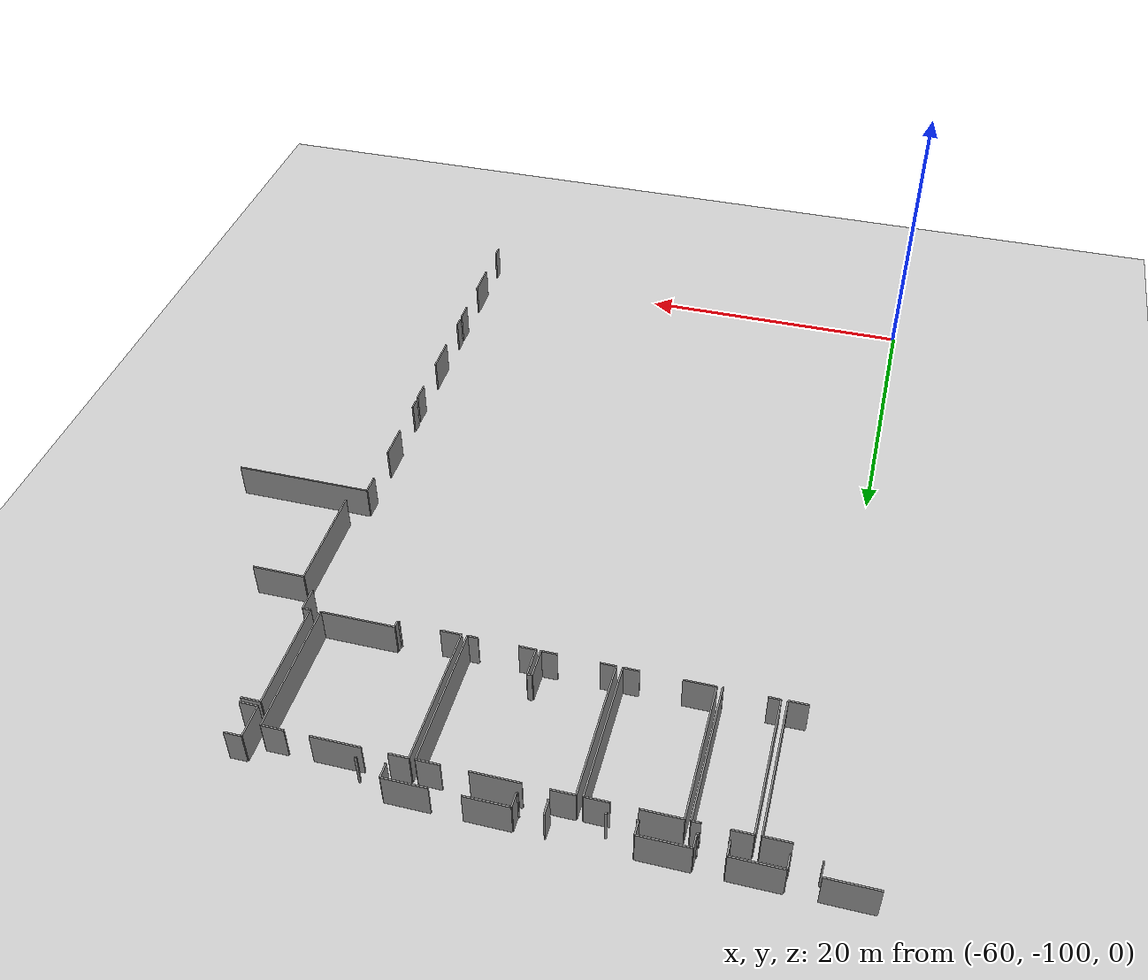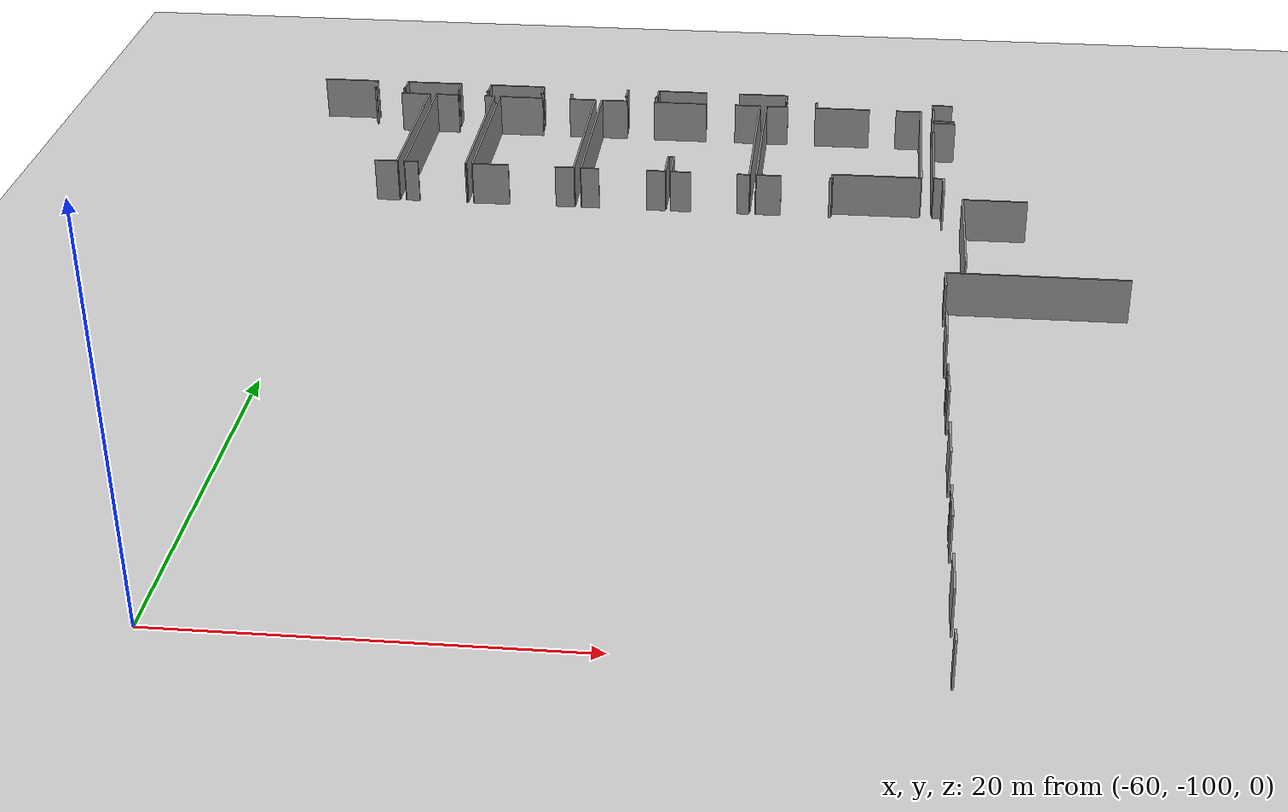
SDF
<sdf version="1.6">
 <world name="default">
  <model name="ground_plane">
   <static>1</static>
   <link name="link">
    <collision name="collision">
     <geometry><plane><normal>0 0 1</normal><size>100 100</size></plane></geometry>
     <surface><friction><ode><mu>100</mu><mu2>50</mu2></ode></friction></surface>
    </collision>
    <visual name="visual">
     <cast_shadows>0</cast_shadows>
     <geometry><plane><normal>0 0 1</normal><size>100 100</size></plane></geometry>
     <material>
      <script><uri>file://media/materials/scripts/gazebo.material</uri><name>Gazebo/Grey</name></script>
     </material>
    </visual>
   </link>
  </model>
  <model name="0510045925_40">
   <static>1</static>
   <link name="Wall_1199">
    <collision name="Wall_1199_Collision">
     <geometry><box><size>1.75046318621 0.1 2.5</size></box></geometry>
     <pose>0.875231593107 0 1.25 0 0 0</pose>
    </collision>
    <visual name="Wall_1199_Visual">
     <pose>0.875231593107 0 1.25 0 0 0</pose>
     <geometry><box><size>1.75046318621 0.1 2.5</size></box></geometry>
     <material>
      <script><uri>file://media/materials/scripts/gazebo.material</uri><name>Gazebo/Grey</name></script>
      <ambient>1 1 1 1</ambient>
     </material>
    </visual>
    <pose>75.0214969163 -150.762341057 0 0 0 0.0</pose>
   </link>
   <link name="Wall_1200">
    <collision name="Wall_1200_Collision">
     <geometry><box><size>9.61625339458 0.1 2.5</size></box></geometry>
     <pose>4.80812669729 0 1.25 0 0 0</pose>
    </collision>
    <visual name="Wall_1200_Visual">
     <pose>4.80812669729 0 1.25 0 0 0</pose>
     <geometry><box><size>9.61625339458 0.1 2.5</size></box></geometry>
     <material>
      <script><uri>file://media/materials/scripts/gazebo.material</uri><name>Gazebo/Grey</name></script>
      <ambient>1 1 1 1</ambient>
     </material>
    </visual>
    <pose>76.7719601025 -150.762341057 0 0 0 -1.57079632679</pose>
   </link>
   <link name="Wall_1201">
    <collision name="Wall_1201_Collision">
     <geometry><box><size>1.31341844116 0.1 2.5</size></box></geometry>
     <pose>0.656709220578 0 1.25 0 0 0</pose>
    </collision>
    <visual name="Wall_1201_Visual">
     <pose>0.656709220578 0 1.25 0 0 0</pose>
     <geometry><box><size>1.31341844116 0.1 2.5</size></box></geometry>
     <material>
      <script><uri>file://media/materials/scripts/gazebo.material</uri><name>Gazebo/Grey</name></script>
      <ambient>1 1 1 1</ambient>
     </material>
    </visual>
    <pose>76.7719601025 -160.378594452 0 0 0 3.14159265359</pose>
   </link>
   <link name="Wall_1205">
    <collision name="Wall_1205_Collision">
     <geometry><box><size>9.60787797264 0.1 2.5</size></box></geometry>
     <pose>4.80393898632 0 1.25 0 0 0</pose>
    </collision>
    <visual name="Wall_1205_Visual">
     <pose>4.80393898632 0 1.25 0 0 0</pose>
     <geometry><box><size>9.60787797264 0.1 2.5</size></box></geometry>
     <material>
      <script><uri>file://media/materials/scripts/gazebo.material</uri><name>Gazebo/Grey</name></script>
      <ambient>1 1 1 1</ambient>
     </material>
    </visual>
    <pose>77.1859089871 -160.346361767 0 0 0 1.57079632679</pose>
   </link>
   <link name="Wall_1206">
    <collision name="Wall_1206_Collision">
     <geometry><box><size>1.35884876018 0.1 2.5</size></box></geometry>
     <pose>0.679424380092 0 1.25 0 0 0</pose>
    </collision>
    <visual name="Wall_1206_Visual">
     <pose>0.679424380092 0 1.25 0 0 0</pose>
     <geometry><box><size>1.35884876018 0.1 2.5</size></box></geometry>
     <material>
      <script><uri>file://media/materials/scripts/gazebo.material</uri><name>Gazebo/Grey</name></script>
      <ambient>1 1 1 1</ambient>
     </material>
    </visual>
    <pose>77.1859089871 -150.738483795 0 0 0 0.0</pose>
   </link>
   <link name="Wall_1207">
    <collision name="Wall_1207_Collision">
     <geometry><box><size>0.575112306794 0.1 2.5</size></box></geometry>
     <pose>0.287556153397 0 1.25 0 0 0</pose>
    </collision>
    <visual name="Wall_1207_Visual">
     <pose>0.287556153397 0 1.25 0 0 0</pose>
     <geometry><box><size>0.575112306794 0.1 2.5</size></box></geometry>
     <material>
      <script><uri>file://media/materials/scripts/gazebo.material</uri><name>Gazebo/Grey</name></script>
      <ambient>1 1 1 1</ambient>
     </material>
    </visual>
    <pose>80.1926854648 -150.738483795 0 0 0 0.0</pose>
   </link>
   <link name="Wall_1208">
    <collision name="Wall_1208_Collision">
     <geometry><box><size>9.61955280323 0.1 2.5</size></box></geometry>
     <pose>4.80977640161 0 1.25 0 0 0</pose>
    </collision>
    <visual name="Wall_1208_Visual">
     <pose>4.80977640161 0 1.25 0 0 0</pose>
     <geometry><box><size>9.61955280323 0.1 2.5</size></box></geometry>
     <material>
      <script><uri>file://media/materials/scripts/gazebo.material</uri><name>Gazebo/Grey</name></script>
      <ambient>1 1 1 1</ambient>
     </material>
    </visual>
    <pose>80.7677977716 -150.738483795 0 0 0 -1.57079632679</pose>
   </link>
   <link name="Wall_1209">
    <collision name="Wall_1209_Collision">
     <geometry><box><size>0.0657343722241 0.1 2.5</size></box></geometry>
     <pose>0.032867186112 0 1.25 0 0 0</pose>
    </collision>
    <visual name="Wall_1209_Visual">
     <pose>0.032867186112 0 1.25 0 0 0</pose>
     <geometry><box><size>0.0657343722241 0.1 2.5</size></box></geometry>
     <material>
      <script><uri>file://media/materials/scripts/gazebo.material</uri><name>Gazebo/Grey</name></script>
      <ambient>1 1 1 1</ambient>
     </material>
    </visual>
    <pose>80.7677977716 -160.358036598 0 0 0 3.14159265359</pose>
   </link>
   <link name="Wall_1210">
    <collision name="Wall_1210_Collision">
     <geometry><box><size>0.777986642006 0.1 2.5</size></box></geometry>
     <pose>0.388993321003 0 1.25 0 0 0</pose>
    </collision>
    <visual name="Wall_1210_Visual">
     <pose>0.388993321003 0 1.25 0 0 0</pose>
     <geometry><box><size>0.777986642006 0.1 2.5</size></box></geometry>
     <material>
      <script><uri>file://media/materials/scripts/gazebo.material</uri><name>Gazebo/Grey</name></script>
      <ambient>1 1 1 1</ambient>
     </material>
    </visual>
    <pose>77.9638080252 -160.358036598 0 0 0 3.12658562367</pose>
   </link>
   <link name="Wall_1211">
    <collision name="Wall_1211_Collision">
     <geometry><box><size>9.60026395269 0.1 2.5</size></box></geometry>
     <pose>4.80013197635 0 1.25 0 0 0</pose>
    </collision>
    <visual name="Wall_1211_Visual">
     <pose>4.80013197635 0 1.25 0 0 0</pose>
     <geometry><box><size>9.60026395269 0.1 2.5</size></box></geometry>
     <material>
      <script><uri>file://media/materials/scripts/gazebo.material</uri><name>Gazebo/Grey</name></script>
      <ambient>1 1 1 1</ambient>
     </material>
    </visual>
    <pose>81.1373315398 -160.350168777 0 0 0 1.57079632679</pose>
   </link>
   <link name="Wall_1212">
    <collision name="Wall_1212_Collision">
     <geometry><box><size>2.64003451689 0.1 2.5</size></box></geometry>
     <pose>1.32001725845 0 1.25 0 0 0</pose>
    </collision>
    <visual name="Wall_1212_Visual">
     <pose>1.32001725845 0 1.25 0 0 0</pose>
     <geometry><box><size>2.64003451689 0.1 2.5</size></box></geometry>
     <material>
      <script><uri>file://media/materials/scripts/gazebo.material</uri><name>Gazebo/Grey</name></script>
      <ambient>1 1 1 1</ambient>
     </material>
    </visual>
    <pose>81.1373315398 -150.749904825 0 0 0 0.0</pose>
   </link>
   <link name="Wall_1213">
    <collision name="Wall_1213_Collision">
     <geometry><box><size>1.57483312606 0.1 2.5</size></box></geometry>
     <pose>0.787416563031 0 1.25 0 0 0</pose>
    </collision>
    <visual name="Wall_1213_Visual">
     <pose>0.787416563031 0 1.25 0 0 0</pose>
     <geometry><box><size>1.57483312606 0.1 2.5</size></box></geometry>
     <material>
      <script><uri>file://media/materials/scripts/gazebo.material</uri><name>Gazebo/Grey</name></script>
      <ambient>1 1 1 1</ambient>
     </material>
    </visual>
    <pose>85.4379838075 -150.749904825 0 0 0 0.0</pose>
   </link>
   <link name="Wall_1214">
    <collision name="Wall_1214_Collision">
     <geometry><box><size>9.59391893607 0.1 2.5</size></box></geometry>
     <pose>4.79695946803 0 1.25 0 0 0</pose>
    </collision>
    <visual name="Wall_1214_Visual">
     <pose>4.79695946803 0 1.25 0 0 0</pose>
     <geometry><box><size>9.59391893607 0.1 2.5</size></box></geometry>
     <material>
      <script><uri>file://media/materials/scripts/gazebo.material</uri><name>Gazebo/Grey</name></script>
      <ambient>1 1 1 1</ambient>
     </material>
    </visual>
    <pose>87.0128169336 -150.749904825 0 0 0 -1.57079632679</pose>
   </link>
   <link name="Wall_1215">
    <collision name="Wall_1215_Collision">
     <geometry><box><size>1.08372883937 0.1 2.5</size></box></geometry>
     <pose>0.541864419685 0 1.25 0 0 0</pose>
    </collision>
    <visual name="Wall_1215_Visual">
     <pose>0.541864419685 0 1.25 0 0 0</pose>
     <geometry><box><size>1.08372883937 0.1 2.5</size></box></geometry>
     <material>
      <script><uri>file://media/materials/scripts/gazebo.material</uri><name>Gazebo/Grey</name></script>
      <ambient>1 1 1 1</ambient>
     </material>
    </visual>
    <pose>87.0128169336 -160.343823761 0 0 0 3.14159265359</pose>
   </link>
   <link name="Wall_1216">
    <collision name="Wall_1216_Collision">
     <geometry><box><size>2.09691069356 0.1 2.5</size></box></geometry>
     <pose>1.04845534678 0 1.25 0 0 0</pose>
    </collision>
    <visual name="Wall_1216_Visual">
     <pose>1.04845534678 0 1.25 0 0 0</pose>
     <geometry><box><size>2.09691069356 0.1 2.5</size></box></geometry>
     <material>
      <script><uri>file://media/materials/scripts/gazebo.material</uri><name>Gazebo/Grey</name></script>
      <ambient>1 1 1 1</ambient>
     </material>
    </visual>
    <pose>83.2342326337 -160.343823761 0 0 0 -3.13856676111</pose>
   </link>
   <link name="Wall_1217">
    <collision name="Wall_1217_Collision">
     <geometry><box><size>9.61853760057 0.1 2.5</size></box></geometry>
     <pose>4.80926880028 0 1.25 0 0 0</pose>
    </collision>
    <visual name="Wall_1217_Visual">
     <pose>4.80926880028 0 1.25 0 0 0</pose>
     <geometry><box><size>9.61853760057 0.1 2.5</size></box></geometry>
     <material>
      <script><uri>file://media/materials/scripts/gazebo.material</uri><name>Gazebo/Grey</name></script>
      <ambient>1 1 1 1</ambient>
     </material>
    </visual>
    <pose>87.4298114261 -160.353975787 0 0 0 1.57079632679</pose>
   </link>
   <link name="Wall_1218">
    <collision name="Wall_1218_Collision">
     <geometry><box><size>1.55732088018 0.1 2.5</size></box></geometry>
     <pose>0.77866044009 0 1.25 0 0 0</pose>
    </collision>
    <visual name="Wall_1218_Visual">
     <pose>0.77866044009 0 1.25 0 0 0</pose>
     <geometry><box><size>1.55732088018 0.1 2.5</size></box></geometry>
     <material>
      <script><uri>file://media/materials/scripts/gazebo.material</uri><name>Gazebo/Grey</name></script>
      <ambient>1 1 1 1</ambient>
     </material>
    </visual>
    <pose>87.4298114261 -150.735438187 0 0 0 0.0</pose>
   </link>
   <link name="Wall_1219">
    <collision name="Wall_1219_Collision">
     <geometry><box><size>3.20677140174 0.1 2.5</size></box></geometry>
     <pose>1.60338570087 0 1.25 0 0 0</pose>
    </collision>
    <visual name="Wall_1219_Visual">
     <pose>1.60338570087 0 1.25 0 0 0</pose>
     <geometry><box><size>3.20677140174 0.1 2.5</size></box></geometry>
     <material>
      <script><uri>file://media/materials/scripts/gazebo.material</uri><name>Gazebo/Grey</name></script>
      <ambient>1 1 1 1</ambient>
     </material>
    </visual>
    <pose>90.6294764092 -150.735438187 0 0 0 0.0</pose>
   </link>
   <link name="Wall_1220">
    <collision name="Wall_1220_Collision">
     <geometry><box><size>1.51798177711 0.1 2.5</size></box></geometry>
     <pose>0.758990888556 0 1.25 0 0 0</pose>
    </collision>
    <visual name="Wall_1220_Visual">
     <pose>0.758990888556 0 1.25 0 0 0</pose>
     <geometry><box><size>1.51798177711 0.1 2.5</size></box></geometry>
     <material>
      <script><uri>file://media/materials/scripts/gazebo.material</uri><name>Gazebo/Grey</name></script>
      <ambient>1 1 1 1</ambient>
     </material>
    </visual>
    <pose>95.5765589706 -150.735438187 0 0 0 0.0</pose>
   </link>
   <link name="Wall_1221">
    <collision name="Wall_1221_Collision">
     <geometry><box><size>9.62183700921 0.1 2.5</size></box></geometry>
     <pose>4.81091850461 0 1.25 0 0 0</pose>
    </collision>
    <visual name="Wall_1221_Visual">
     <pose>4.81091850461 0 1.25 0 0 0</pose>
     <geometry><box><size>9.62183700921 0.1 2.5</size></box></geometry>
     <material>
      <script><uri>file://media/materials/scripts/gazebo.material</uri><name>Gazebo/Grey</name></script>
      <ambient>1 1 1 1</ambient>
     </material>
    </visual>
    <pose>97.0945407477 -150.735438187 0 0 0 -1.57079632679</pose>
   </link>
   <link name="Wall_1222">
    <collision name="Wall_1222_Collision">
     <geometry><box><size>0.702012639273 0.1 2.5</size></box></geometry>
     <pose>0.351006319637 0 1.25 0 0 0</pose>
    </collision>
    <visual name="Wall_1222_Visual">
     <pose>0.351006319637 0 1.25 0 0 0</pose>
     <geometry><box><size>0.702012639273 0.1 2.5</size></box></geometry>
     <material>
      <script><uri>file://media/materials/scripts/gazebo.material</uri><name>Gazebo/Grey</name></script>
      <ambient>1 1 1 1</ambient>
     </material>
    </visual>
    <pose>97.0945407477 -160.357275196 0 0 0 3.14159265359</pose>
   </link>
   <link name="Wall_1223">
    <collision name="Wall_1223_Collision">
     <geometry><box><size>1.13550417502 0.1 2.5</size></box></geometry>
     <pose>0.56775208751 0 1.25 0 0 0</pose>
    </collision>
    <visual name="Wall_1223_Visual">
     <pose>0.56775208751 0 1.25 0 0 0</pose>
     <geometry><box><size>1.13550417502 0.1 2.5</size></box></geometry>
     <material>
      <script><uri>file://media/materials/scripts/gazebo.material</uri><name>Gazebo/Grey</name></script>
      <ambient>1 1 1 1</ambient>
     </material>
    </visual>
    <pose>93.7258445217 -160.357275196 0 0 0 3.14159265359</pose>
   </link>
   <link name="Wall_1224">
    <collision name="Wall_1224_Collision">
     <geometry><box><size>1.97913758534 0.1 2.5</size></box></geometry>
     <pose>0.98956879267 0 1.25 0 0 0</pose>
    </collision>
    <visual name="Wall_1224_Visual">
     <pose>0.98956879267 0 1.25 0 0 0</pose>
     <geometry><box><size>1.97913758534 0.1 2.5</size></box></geometry>
     <material>
      <script><uri>file://media/materials/scripts/gazebo.material</uri><name>Gazebo/Grey</name></script>
      <ambient>1 1 1 1</ambient>
     </material>
    </visual>
    <pose>92.5903403467 -160.357275196 0 0 0 1.57079632679</pose>
   </link>
   <link name="Wall_1225">
    <collision name="Wall_1225_Collision">
     <geometry><box><size>0.317758432527 0.1 2.5</size></box></geometry>
     <pose>0.158879216264 0 1.25 0 0 0</pose>
    </collision>
    <visual name="Wall_1225_Visual">
     <pose>0.158879216264 0 1.25 0 0 0</pose>
     <geometry><box><size>0.317758432527 0.1 2.5</size></box></geometry>
     <material>
      <script><uri>file://media/materials/scripts/gazebo.material</uri><name>Gazebo/Grey</name></script>
      <ambient>1 1 1 1</ambient>
     </material>
    </visual>
    <pose>92.5903403467 -158.378137611 0 0 0 3.14159265359</pose>
   </link>
   <link name="Wall_1226">
    <collision name="Wall_1226_Collision">
     <geometry><box><size>1.96822415675 0.1 2.5</size></box></geometry>
     <pose>0.984112078374 0 1.25 0 0 0</pose>
    </collision>
    <visual name="Wall_1226_Visual">
     <pose>0.984112078374 0 1.25 0 0 0</pose>
     <geometry><box><size>1.96822415675 0.1 2.5</size></box></geometry>
     <material>
      <script><uri>file://media/materials/scripts/gazebo.material</uri><name>Gazebo/Grey</name></script>
      <ambient>1 1 1 1</ambient>
     </material>
    </visual>
    <pose>92.2725819142 -158.378137611 0 0 0 -1.57079632679</pose>
   </link>
   <link name="Wall_1227">
    <collision name="Wall_1227_Collision">
     <geometry><box><size>1.06418618817 0.1 2.5</size></box></geometry>
     <pose>0.532093094084 0 1.25 0 0 0</pose>
    </collision>
    <visual name="Wall_1227_Visual">
     <pose>0.532093094084 0 1.25 0 0 0</pose>
     <geometry><box><size>1.06418618817 0.1 2.5</size></box></geometry>
     <material>
      <script><uri>file://media/materials/scripts/gazebo.material</uri><name>Gazebo/Grey</name></script>
      <ambient>1 1 1 1</ambient>
     </material>
    </visual>
    <pose>92.2725819142 -160.346361767 0 0 0 3.14159265359</pose>
   </link>
   <link name="Wall_1228">
    <collision name="Wall_1228_Collision">
     <geometry><box><size>1.02309881305 0.1 2.5</size></box></geometry>
     <pose>0.511549406523 0 1.25 0 0 0</pose>
    </collision>
    <visual name="Wall_1228_Visual">
     <pose>0.511549406523 0 1.25 0 0 0</pose>
     <geometry><box><size>1.02309881305 0.1 2.5</size></box></geometry>
     <material>
      <script><uri>file://media/materials/scripts/gazebo.material</uri><name>Gazebo/Grey</name></script>
      <ambient>1 1 1 1</ambient>
     </material>
    </visual>
    <pose>88.4528819066 -160.346361767 0 0 0 -3.13415046899</pose>
   </link>
   <link name="Wall_1229">
    <collision name="Wall_1229_Collision">
     <geometry><box><size>9.61726859724 0.1 2.5</size></box></geometry>
     <pose>4.80863429862 0 1.25 0 0 0</pose>
    </collision>
    <visual name="Wall_1229_Visual">
     <pose>4.80863429862 0 1.25 0 0 0</pose>
     <geometry><box><size>9.61726859724 0.1 2.5</size></box></geometry>
     <material>
      <script><uri>file://media/materials/scripts/gazebo.material</uri><name>Gazebo/Grey</name></script>
      <ambient>1 1 1 1</ambient>
     </material>
    </visual>
    <pose>97.4795563564 -160.341793355 0 0 0 1.57079632679</pose>
   </link>
   <link name="Wall_1230">
    <collision name="Wall_1230_Collision">
     <geometry><box><size>1.31646404914 0.1 2.5</size></box></geometry>
     <pose>0.658232024568 0 1.25 0 0 0</pose>
    </collision>
    <visual name="Wall_1230_Visual">
     <pose>0.658232024568 0 1.25 0 0 0</pose>
     <geometry><box><size>1.31646404914 0.1 2.5</size></box></geometry>
     <material>
      <script><uri>file://media/materials/scripts/gazebo.material</uri><name>Gazebo/Grey</name></script>
      <ambient>1 1 1 1</ambient>
     </material>
    </visual>
    <pose>97.4795563564 -150.724524758 0 0 0 0.0</pose>
   </link>
   <link name="Wall_1231">
    <collision name="Wall_1231_Collision">
     <geometry><box><size>3.28316540189 0.1 2.5</size></box></geometry>
     <pose>1.64158270095 0 1.25 0 0 0</pose>
    </collision>
    <visual name="Wall_1231_Visual">
     <pose>1.64158270095 0 1.25 0 0 0</pose>
     <geometry><box><size>3.28316540189 0.1 2.5</size></box></geometry>
     <material>
      <script><uri>file://media/materials/scripts/gazebo.material</uri><name>Gazebo/Grey</name></script>
      <ambient>1 1 1 1</ambient>
     </material>
    </visual>
    <pose>100.444455724 -150.724524758 0 0 0 0.0</pose>
   </link>
   <link name="Wall_1232">
    <collision name="Wall_1232_Collision">
     <geometry><box><size>1.4948859166 0.1 2.5</size></box></geometry>
     <pose>0.747442958301 0 1.25 0 0 0</pose>
    </collision>
    <visual name="Wall_1232_Visual">
     <pose>0.747442958301 0 1.25 0 0 0</pose>
     <geometry><box><size>1.4948859166 0.1 2.5</size></box></geometry>
     <material>
      <script><uri>file://media/materials/scripts/gazebo.material</uri><name>Gazebo/Grey</name></script>
      <ambient>1 1 1 1</ambient>
     </material>
    </visual>
    <pose>105.326057714 -150.724524758 0 0 0 0.0</pose>
   </link>
   <link name="Wall_1233">
    <collision name="Wall_1233_Collision">
     <geometry><box><size>9.1685490216 0.1 2.5</size></box></geometry>
     <pose>4.5842745108 0 1.25 0 0 0</pose>
    </collision>
    <visual name="Wall_1233_Visual">
     <pose>4.5842745108 0 1.25 0 0 0</pose>
     <geometry><box><size>9.1685490216 0.1 2.5</size></box></geometry>
     <material>
      <script><uri>file://media/materials/scripts/gazebo.material</uri><name>Gazebo/Grey</name></script>
      <ambient>1 1 1 1</ambient>
     </material>
    </visual>
    <pose>106.820943631 -150.724524758 0 0 0 -1.57079632679</pose>
   </link>
   <link name="Wall_1234">
    <collision name="Wall_1234_Collision">
     <geometry><box><size>5.0445420167 0.1 2.5</size></box></geometry>
     <pose>2.52227100835 0 1.25 0 0 0</pose>
    </collision>
    <visual name="Wall_1234_Visual">
     <pose>2.52227100835 0 1.25 0 0 0</pose>
     <geometry><box><size>5.0445420167 0.1 2.5</size></box></geometry>
     <material>
      <script><uri>file://media/materials/scripts/gazebo.material</uri><name>Gazebo/Grey</name></script>
      <ambient>1 1 1 1</ambient>
     </material>
    </visual>
    <pose>106.820943631 -159.89307378 0 0 0 3.14159265359</pose>
   </link>
   <link name="Wall_1235">
    <collision name="Wall_1235_Collision">
     <geometry><box><size>0.460902007563 0.1 2.5</size></box></geometry>
     <pose>0.230451003782 0 1.25 0 0 0</pose>
    </collision>
    <visual name="Wall_1235_Visual">
     <pose>0.230451003782 0 1.25 0 0 0</pose>
     <geometry><box><size>0.460902007563 0.1 2.5</size></box></geometry>
     <material>
      <script><uri>file://media/materials/scripts/gazebo.material</uri><name>Gazebo/Grey</name></script>
      <ambient>1 1 1 1</ambient>
     </material>
    </visual>
    <pose>101.776401614 -159.89307378 0 0 0 -1.57079632679</pose>
   </link>
   <link name="Wall_1236">
    <collision name="Wall_1236_Collision">
     <geometry><box><size>0.144158777696 0.1 2.5</size></box></geometry>
     <pose>0.072079388848 0 1.25 0 0 0</pose>
    </collision>
    <visual name="Wall_1236_Visual">
     <pose>0.072079388848 0 1.25 0 0 0</pose>
     <geometry><box><size>0.144158777696 0.1 2.5</size></box></geometry>
     <material>
      <script><uri>file://media/materials/scripts/gazebo.material</uri><name>Gazebo/Grey</name></script>
      <ambient>1 1 1 1</ambient>
     </material>
    </visual>
    <pose>101.776401614 -160.353975787 0 0 0 3.14159265359</pose>
   </link>
   <link name="Wall_1237">
    <collision name="Wall_1237_Collision">
     <geometry><box><size>1.4231124727 0.1 2.5</size></box></geometry>
     <pose>0.711556236352 0 1.25 0 0 0</pose>
    </collision>
    <visual name="Wall_1237_Visual">
     <pose>0.711556236352 0 1.25 0 0 0</pose>
     <geometry><box><size>1.4231124727 0.1 2.5</size></box></geometry>
     <material>
      <script><uri>file://media/materials/scripts/gazebo.material</uri><name>Gazebo/Grey</name></script>
      <ambient>1 1 1 1</ambient>
     </material>
    </visual>
    <pose>98.9026166849 -160.353975787 0 0 0 3.13303213505</pose>
   </link>
   <link name="Wall_1318">
    <collision name="Wall_1318_Collision">
     <geometry><box><size>0.144412578361 0.1 2.5</size></box></geometry>
     <pose>0.0722062891805 0 1.25 0 0 0</pose>
    </collision>
    <visual name="Wall_1318_Visual">
     <pose>0.0722062891805 0 1.25 0 0 0</pose>
     <geometry><box><size>0.144412578361 0.1 2.5</size></box></geometry>
     <material>
      <script><uri>file://media/materials/scripts/gazebo.material</uri><name>Gazebo/Grey</name></script>
      <ambient>1 1 1 1</ambient>
     </material>
    </visual>
    <pose>100.585315094 -150.010329687 0 0 0 3.14159265359</pose>
   </link>
   <link name="Wall_1319">
    <collision name="Wall_1319_Collision">
     <geometry><box><size>0.0928910433745 0.1 2.5</size></box></geometry>
     <pose>0.0464455216873 0 1.25 0 0 0</pose>
    </collision>
    <visual name="Wall_1319_Visual">
     <pose>0.0464455216873 0 1.25 0 0 0</pose>
     <geometry><box><size>0.0928910433745 0.1 2.5</size></box></geometry>
     <material>
      <script><uri>file://media/materials/scripts/gazebo.material</uri><name>Gazebo/Grey</name></script>
      <ambient>1 1 1 1</ambient>
     </material>
    </visual>
    <pose>98.7307936347 -150.010329687 0 0 0 3.14159265359</pose>
   </link>
   <link name="Wall_1320">
    <collision name="Wall_1320_Collision">
     <geometry><box><size>0.952513895586 0.1 2.5</size></box></geometry>
     <pose>0.476256947793 0 1.25 0 0 0</pose>
    </collision>
    <visual name="Wall_1320_Visual">
     <pose>0.476256947793 0 1.25 0 0 0</pose>
     <geometry><box><size>0.952513895586 0.1 2.5</size></box></geometry>
     <material>
      <script><uri>file://media/materials/scripts/gazebo.material</uri><name>Gazebo/Grey</name></script>
      <ambient>1 1 1 1</ambient>
     </material>
    </visual>
    <pose>98.6379025913 -150.010329687 0 0 0 1.57079632679</pose>
   </link>
   <link name="Wall_1321">
    <collision name="Wall_1321_Collision">
     <geometry><box><size>2.92632166696 0.1 2.5</size></box></geometry>
     <pose>1.46316083348 0 1.25 0 0 0</pose>
    </collision>
    <visual name="Wall_1321_Visual">
     <pose>1.46316083348 0 1.25 0 0 0</pose>
     <geometry><box><size>2.92632166696 0.1 2.5</size></box></geometry>
     <material>
      <script><uri>file://media/materials/scripts/gazebo.material</uri><name>Gazebo/Grey</name></script>
      <ambient>1 1 1 1</ambient>
     </material>
    </visual>
    <pose>98.6379025913 -149.057815791 0 0 0 3.14159265359</pose>
   </link>
   <link name="Wall_1322">
    <collision name="Wall_1322_Collision">
     <geometry><box><size>2.97860460394 0.1 2.5</size></box></geometry>
     <pose>1.48930230197 0 1.25 0 0 0</pose>
    </collision>
    <visual name="Wall_1322_Visual">
     <pose>1.48930230197 0 1.25 0 0 0</pose>
     <geometry><box><size>2.97860460394 0.1 2.5</size></box></geometry>
     <material>
      <script><uri>file://media/materials/scripts/gazebo.material</uri><name>Gazebo/Grey</name></script>
      <ambient>1 1 1 1</ambient>
     </material>
    </visual>
    <pose>93.7390421563 -149.057815791 0 0 0 3.14159265359</pose>
   </link>
   <link name="Wall_1323">
    <collision name="Wall_1323_Collision">
     <geometry><box><size>0.96393492551 0.1 2.5</size></box></geometry>
     <pose>0.481967462755 0 1.25 0 0 0</pose>
    </collision>
    <visual name="Wall_1323_Visual">
     <pose>0.481967462755 0 1.25 0 0 0</pose>
     <geometry><box><size>0.96393492551 0.1 2.5</size></box></geometry>
     <material>
      <script><uri>file://media/materials/scripts/gazebo.material</uri><name>Gazebo/Grey</name></script>
      <ambient>1 1 1 1</ambient>
     </material>
    </visual>
    <pose>90.7604375523 -149.057815791 0 0 0 -1.57079632679</pose>
   </link>
   <link name="Wall_1324">
    <collision name="Wall_1324_Collision">
     <geometry><box><size>0.124362325829 0.1 2.5</size></box></geometry>
     <pose>0.0621811629146 0 1.25 0 0 0</pose>
    </collision>
    <visual name="Wall_1324_Visual">
     <pose>0.0621811629146 0 1.25 0 0 0</pose>
     <geometry><box><size>0.124362325829 0.1 2.5</size></box></geometry>
     <material>
      <script><uri>file://media/materials/scripts/gazebo.material</uri><name>Gazebo/Grey</name></script>
      <ambient>1 1 1 1</ambient>
     </material>
    </visual>
    <pose>90.7604375523 -150.021750717 0 0 0 3.14159265359</pose>
   </link>
   <link name="Wall_1325">
    <collision name="Wall_1325_Collision">
     <geometry><box><size>0.0926372427096 0.1 2.5</size></box></geometry>
     <pose>0.0463186213548 0 1.25 0 0 0</pose>
    </collision>
    <visual name="Wall_1325_Visual">
     <pose>0.0463186213548 0 1.25 0 0 0</pose>
     <geometry><box><size>0.0926372427096 0.1 2.5</size></box></geometry>
     <material>
      <script><uri>file://media/materials/scripts/gazebo.material</uri><name>Gazebo/Grey</name></script>
      <ambient>1 1 1 1</ambient>
     </material>
    </visual>
    <pose>88.9384025786 -150.021750717 0 0 0 3.14159265359</pose>
   </link>
   <link name="Wall_1326">
    <collision name="Wall_1326_Collision">
     <geometry><box><size>0.979416766072 0.1 2.5</size></box></geometry>
     <pose>0.489708383036 0 1.25 0 0 0</pose>
    </collision>
    <visual name="Wall_1326_Visual">
     <pose>0.489708383036 0 1.25 0 0 0</pose>
     <geometry><box><size>0.979416766072 0.1 2.5</size></box></geometry>
     <material>
      <script><uri>file://media/materials/scripts/gazebo.material</uri><name>Gazebo/Grey</name></script>
      <ambient>1 1 1 1</ambient>
     </material>
    </visual>
    <pose>88.8457653359 -150.021750717 0 0 0 1.57079632679</pose>
   </link>
   <link name="Wall_1329">
    <collision name="Wall_1329_Collision">
     <geometry><box><size>0.131722545113 0.1 2.5</size></box></geometry>
     <pose>0.0658612725565 0 1.25 0 0 0</pose>
    </collision>
    <visual name="Wall_1329_Visual">
     <pose>0.0658612725565 0 1.25 0 0 0</pose>
     <geometry><box><size>0.131722545113 0.1 2.5</size></box></geometry>
     <material>
      <script><uri>file://media/materials/scripts/gazebo.material</uri><name>Gazebo/Grey</name></script>
      <ambient>1 1 1 1</ambient>
     </material>
    </visual>
    <pose>85.5511789041 -150.014136697 0 0 0 3.14159265359</pose>
   </link>
   <link name="Wall_1330">
    <collision name="Wall_1330_Collision">
     <geometry><box><size>0.119540113195 0.1 2.5</size></box></geometry>
     <pose>0.0597700565976 0 1.25 0 0 0</pose>
    </collision>
    <visual name="Wall_1330_Visual">
     <pose>0.0597700565976 0 1.25 0 0 0</pose>
     <geometry><box><size>0.119540113195 0.1 2.5</size></box></geometry>
     <material>
      <script><uri>file://media/materials/scripts/gazebo.material</uri><name>Gazebo/Grey</name></script>
      <ambient>1 1 1 1</ambient>
     </material>
    </visual>
    <pose>83.7380269536 -150.014136697 0 0 0 3.14159265359</pose>
   </link>
   <link name="Wall_1331">
    <collision name="Wall_1331_Collision">
     <geometry><box><size>0.943377071648 0.1 2.5</size></box></geometry>
     <pose>0.471688535824 0 1.25 0 0 0</pose>
    </collision>
    <visual name="Wall_1331_Visual">
     <pose>0.471688535824 0 1.25 0 0 0</pose>
     <geometry><box><size>0.943377071648 0.1 2.5</size></box></geometry>
     <material>
      <script><uri>file://media/materials/scripts/gazebo.material</uri><name>Gazebo/Grey</name></script>
      <ambient>1 1 1 1</ambient>
     </material>
    </visual>
    <pose>83.6184868404 -150.014136697 0 0 0 1.57079632679</pose>
   </link>
   <link name="Wall_1332">
    <collision name="Wall_1332_Collision">
     <geometry><box><size>3.30473845841 0.1 2.5</size></box></geometry>
     <pose>1.65236922921 0 1.25 0 0 0</pose>
    </collision>
    <visual name="Wall_1332_Visual">
     <pose>1.65236922921 0 1.25 0 0 0</pose>
     <geometry><box><size>3.30473845841 0.1 2.5</size></box></geometry>
     <material>
      <script><uri>file://media/materials/scripts/gazebo.material</uri><name>Gazebo/Grey</name></script>
      <ambient>1 1 1 1</ambient>
     </material>
    </visual>
    <pose>83.6184868404 -149.070759625 0 0 0 3.14159265359</pose>
   </link>
   <link name="Wall_1333">
    <collision name="Wall_1333_Collision">
     <geometry><box><size>0.953529098246 0.1 2.5</size></box></geometry>
     <pose>0.476764549123 0 1.25 0 0 0</pose>
    </collision>
    <visual name="Wall_1333_Visual">
     <pose>0.476764549123 0 1.25 0 0 0</pose>
     <geometry><box><size>0.953529098246 0.1 2.5</size></box></geometry>
     <material>
      <script><uri>file://media/materials/scripts/gazebo.material</uri><name>Gazebo/Grey</name></script>
      <ambient>1 1 1 1</ambient>
     </material>
    </visual>
    <pose>80.313748382 -149.070759625 0 0 0 -1.57079632679</pose>
   </link>
   <link name="Wall_1334">
    <collision name="Wall_1334_Collision">
     <geometry><box><size>0.126392731149 0.1 2.5</size></box></geometry>
     <pose>0.0631963655745 0 1.25 0 0 0</pose>
    </collision>
    <visual name="Wall_1334_Visual">
     <pose>0.0631963655745 0 1.25 0 0 0</pose>
     <geometry><box><size>0.126392731149 0.1 2.5</size></box></geometry>
     <material>
      <script><uri>file://media/materials/scripts/gazebo.material</uri><name>Gazebo/Grey</name></script>
      <ambient>1 1 1 1</ambient>
     </material>
    </visual>
    <pose>80.313748382 -150.024288724 0 0 0 3.14159265359</pose>
   </link>
   <link name="Wall_1335">
    <collision name="Wall_1335_Collision">
     <geometry><box><size>0.0824852161113 0.1 2.5</size></box></geometry>
     <pose>0.0412426080556 0 1.25 0 0 0</pose>
    </collision>
    <visual name="Wall_1335_Visual">
     <pose>0.0412426080556 0 1.25 0 0 0</pose>
     <geometry><box><size>0.0824852161113 0.1 2.5</size></box></geometry>
     <material>
      <script><uri>file://media/materials/scripts/gazebo.material</uri><name>Gazebo/Grey</name></script>
      <ambient>1 1 1 1</ambient>
     </material>
    </visual>
    <pose>78.5044034415 -150.024288724 0 0 0 3.14159265359</pose>
   </link>
   <link name="Wall_1336">
    <collision name="Wall_1336_Collision">
     <geometry><box><size>0.972564148118 0.1 2.5</size></box></geometry>
     <pose>0.486282074059 0 1.25 0 0 0</pose>
    </collision>
    <visual name="Wall_1336_Visual">
     <pose>0.486282074059 0 1.25 0 0 0</pose>
     <geometry><box><size>0.972564148118 0.1 2.5</size></box></geometry>
     <material>
      <script><uri>file://media/materials/scripts/gazebo.material</uri><name>Gazebo/Grey</name></script>
      <ambient>1 1 1 1</ambient>
     </material>
    </visual>
    <pose>78.4219182254 -150.024288724 0 0 0 1.57079632679</pose>
   </link>
   <link name="Wall_1337">
    <collision name="Wall_1337_Collision">
     <geometry><box><size>3.31260627903 0.1 2.5</size></box></geometry>
     <pose>1.65630313951 0 1.25 0 0 0</pose>
    </collision>
    <visual name="Wall_1337_Visual">
     <pose>1.65630313951 0 1.25 0 0 0</pose>
     <geometry><box><size>3.31260627903 0.1 2.5</size></box></geometry>
     <material>
      <script><uri>file://media/materials/scripts/gazebo.material</uri><name>Gazebo/Grey</name></script>
      <ambient>1 1 1 1</ambient>
     </material>
    </visual>
    <pose>78.4219182254 -149.051724576 0 0 0 3.14159265359</pose>
   </link>
   <link name="Wall_1338">
    <collision name="Wall_1338_Collision">
     <geometry><box><size>0.983477576711 0.1 2.5</size></box></geometry>
     <pose>0.491738788356 0 1.25 0 0 0</pose>
    </collision>
    <visual name="Wall_1338_Visual">
     <pose>0.491738788356 0 1.25 0 0 0</pose>
     <geometry><box><size>0.983477576711 0.1 2.5</size></box></geometry>
     <material>
      <script><uri>file://media/materials/scripts/gazebo.material</uri><name>Gazebo/Grey</name></script>
      <ambient>1 1 1 1</ambient>
     </material>
    </visual>
    <pose>75.1093119464 -149.051724576 0 0 0 -1.57079632679</pose>
   </link>
   <link name="Wall_1339">
    <collision name="Wall_1339_Collision">
     <geometry><box><size>0.0982208573386 0.1 2.5</size></box></geometry>
     <pose>0.0491104286693 0 1.25 0 0 0</pose>
    </collision>
    <visual name="Wall_1339_Visual">
     <pose>0.0491104286693 0 1.25 0 0 0</pose>
     <geometry><box><size>0.0982208573386 0.1 2.5</size></box></geometry>
     <material>
      <script><uri>file://media/materials/scripts/gazebo.material</uri><name>Gazebo/Grey</name></script>
      <ambient>1 1 1 1</ambient>
     </material>
    </visual>
    <pose>75.1093119464 -150.035202152 0 0 0 3.14159265359</pose>
   </link>
   <link name="Wall_1340">
    <collision name="Wall_1340_Collision">
     <geometry><box><size>0.0982208573386 0.1 2.5</size></box></geometry>
     <pose>0.0491104286693 0 1.25 0 0 0</pose>
    </collision>
    <visual name="Wall_1340_Visual">
     <pose>0.0491104286693 0 1.25 0 0 0</pose>
     <geometry><box><size>0.0982208573386 0.1 2.5</size></box></geometry>
     <material>
      <script><uri>file://media/materials/scripts/gazebo.material</uri><name>Gazebo/Grey</name></script>
      <ambient>1 1 1 1</ambient>
     </material>
    </visual>
    <pose>73.2981904013 -150.035202152 0 0 0 3.14159265359</pose>
   </link>
   <link name="Wall_1342">
    <collision name="Wall_1342_Collision">
     <geometry><box><size>3.29128702317 0.1 2.5</size></box></geometry>
     <pose>1.64564351159 0 1.25 0 0 0</pose>
    </collision>
    <visual name="Wall_1342_Visual">
     <pose>1.64564351159 0 1.25 0 0 0</pose>
     <geometry><box><size>3.29128702317 0.1 2.5</size></box></geometry>
     <material>
      <script><uri>file://media/materials/scripts/gazebo.material</uri><name>Gazebo/Grey</name></script>
      <ambient>1 1 1 1</ambient>
     </material>
    </visual>
    <pose>73.1999695439 -149.069744423 0 0 0 3.14159265359</pose>
   </link>
   <link name="Wall_1353">
    <collision name="Wall_1353_Collision">
     <geometry><box><size>7.57214283901 0.1 2.5</size></box></geometry>
     <pose>3.78607141951 0 1.25 0 0 0</pose>
    </collision>
    <visual name="Wall_1353_Visual">
     <pose>3.78607141951 0 1.25 0 0 0</pose>
     <geometry><box><size>7.57214283901 0.1 2.5</size></box></geometry>
     <material>
      <script><uri>file://media/materials/scripts/gazebo.material</uri><name>Gazebo/Grey</name></script>
      <ambient>1 1 1 1</ambient>
     </material>
    </visual>
    <pose>107.540214715 -159.894850385 0 0 0 1.57079632679</pose>
   </link>
   <link name="Wall_1354">
    <collision name="Wall_1354_Collision">
     <geometry><box><size>1.3174792518 0.1 2.5</size></box></geometry>
     <pose>0.658739625898 0 1.25 0 0 0</pose>
    </collision>
    <visual name="Wall_1354_Visual">
     <pose>0.658739625898 0 1.25 0 0 0</pose>
     <geometry><box><size>1.3174792518 0.1 2.5</size></box></geometry>
     <material>
      <script><uri>file://media/materials/scripts/gazebo.material</uri><name>Gazebo/Grey</name></script>
      <ambient>1 1 1 1</ambient>
     </material>
    </visual>
    <pose>107.540214715 -152.322707545 0 0 0 0.0</pose>
   </link>
   <link name="Wall_1359">
    <collision name="Wall_1359_Collision">
     <geometry><box><size>1.59716758458 0.1 2.5</size></box></geometry>
     <pose>0.79858379229 0 1.25 0 0 0</pose>
    </collision>
    <visual name="Wall_1359_Visual">
     <pose>0.79858379229 0 1.25 0 0 0</pose>
     <geometry><box><size>1.59716758458 0.1 2.5</size></box></geometry>
     <material>
      <script><uri>file://media/materials/scripts/gazebo.material</uri><name>Gazebo/Grey</name></script>
      <ambient>1 1 1 1</ambient>
     </material>
    </visual>
    <pose>108.067612497 -161.488210959 0 0 0 1.57079632679</pose>
   </link>
   <link name="Wall_1360">
    <collision name="Wall_1360_Collision">
     <geometry><box><size>0.527411522015 0.1 2.5</size></box></geometry>
     <pose>0.263705761007 0 1.25 0 0 0</pose>
    </collision>
    <visual name="Wall_1360_Visual">
     <pose>0.263705761007 0 1.25 0 0 0</pose>
     <geometry><box><size>0.527411522015 0.1 2.5</size></box></geometry>
     <material>
      <script><uri>file://media/materials/scripts/gazebo.material</uri><name>Gazebo/Grey</name></script>
      <ambient>1 1 1 1</ambient>
     </material>
    </visual>
    <pose>108.067612497 -159.891043375 0 0 0 -3.13437429966</pose>
   </link>
   <link name="Wall_1361">
    <collision name="Wall_1361_Collision">
     <geometry><box><size>2.28141417731 0.1 2.5</size></box></geometry>
     <pose>1.14070708865 0 1.25 0 0 0</pose>
    </collision>
    <visual name="Wall_1361_Visual">
     <pose>1.14070708865 0 1.25 0 0 0</pose>
     <geometry><box><size>2.28141417731 0.1 2.5</size></box></geometry>
     <material>
      <script><uri>file://media/materials/scripts/gazebo.material</uri><name>Gazebo/Grey</name></script>
      <ambient>1 1 1 1</ambient>
     </material>
    </visual>
    <pose>107.564325779 -151.989213472 0 0 0 1.57079632679</pose>
   </link>
   <link name="Wall_1362">
    <collision name="Wall_1362_Collision">
     <geometry><box><size>1.16266084617 0.1 2.5</size></box></geometry>
     <pose>0.581330423086 0 1.25 0 0 0</pose>
    </collision>
    <visual name="Wall_1362_Visual">
     <pose>0.581330423086 0 1.25 0 0 0</pose>
     <geometry><box><size>1.16266084617 0.1 2.5</size></box></geometry>
     <material>
      <script><uri>file://media/materials/scripts/gazebo.material</uri><name>Gazebo/Grey</name></script>
      <ambient>1 1 1 1</ambient>
     </material>
    </visual>
    <pose>107.564325779 -149.707799294 0 0 0 0.0</pose>
   </link>
   <link name="Wall_1366">
    <collision name="Wall_1366_Collision">
     <geometry><box><size>1.2311964693 0.1 2.5</size></box></geometry>
     <pose>0.615598234649 0 1.25 0 0 0</pose>
    </collision>
    <visual name="Wall_1366_Visual">
     <pose>0.615598234649 0 1.25 0 0 0</pose>
     <geometry><box><size>1.2311964693 0.1 2.5</size></box></geometry>
     <material>
      <script><uri>file://media/materials/scripts/gazebo.material</uri><name>Gazebo/Grey</name></script>
      <ambient>1 1 1 1</ambient>
     </material>
    </visual>
    <pose>108.795512804 -151.984391259 0 0 0 -3.13767595542</pose>
   </link>
   <link name="Wall_1434">
    <collision name="Wall_1434_Collision">
     <geometry><box><size>3.58544199386 0.1 2.5</size></box></geometry>
     <pose>1.79272099693 0 1.25 0 0 0</pose>
    </collision>
    <visual name="Wall_1434_Visual">
     <pose>1.79272099693 0 1.25 0 0 0</pose>
     <geometry><box><size>3.58544199386 0.1 2.5</size></box></geometry>
     <material>
      <script><uri>file://media/materials/scripts/gazebo.material</uri><name>Gazebo/Grey</name></script>
      <ambient>1 1 1 1</ambient>
     </material>
    </visual>
    <pose>109.102357808 -162.460775107 0 0 0 0.0</pose>
   </link>
   <link name="Wall_1440">
    <collision name="Wall_1440_Collision">
     <geometry><box><size>7.43414189196 0.1 2.5</size></box></geometry>
     <pose>3.71707094598 0 1.25 0 0 0</pose>
    </collision>
    <visual name="Wall_1440_Visual">
     <pose>3.71707094598 0 1.25 0 0 0</pose>
     <geometry><box><size>7.43414189196 0.1 2.5</size></box></geometry>
     <material>
      <script><uri>file://media/materials/scripts/gazebo.material</uri><name>Gazebo/Grey</name></script>
      <ambient>1 1 1 1</ambient>
     </material>
    </visual>
    <pose>109.133829091 -169.894850385 0 0 0 1.57502968377</pose>
   </link>
   <link name="Wall_1460">
    <collision name="Wall_1460_Collision">
     <geometry><box><size>0.773076825461 0.1 2.5</size></box></geometry>
     <pose>0.386538412731 0 1.25 0 0 0</pose>
    </collision>
    <visual name="Wall_1460_Visual">
     <pose>0.386538412731 0 1.25 0 0 0</pose>
     <geometry><box><size>0.773076825461 0.1 2.5</size></box></geometry>
     <material>
      <script><uri>file://media/materials/scripts/gazebo.material</uri><name>Gazebo/Grey</name></script>
      <ambient>1 1 1 1</ambient>
     </material>
    </visual>
    <pose>108.053145859 -181.223496866 0 0 0 1.57079632679</pose>
   </link>
   <link name="Wall_1461">
    <collision name="Wall_1461_Collision">
     <geometry><box><size>2.49968274917 0.1 2.5</size></box></geometry>
     <pose>1.24984137458 0 1.25 0 0 0</pose>
    </collision>
    <visual name="Wall_1461_Visual">
     <pose>1.24984137458 0 1.25 0 0 0</pose>
     <geometry><box><size>2.49968274917 0.1 2.5</size></box></geometry>
     <material>
      <script><uri>file://media/materials/scripts/gazebo.material</uri><name>Gazebo/Grey</name></script>
      <ambient>1 1 1 1</ambient>
     </material>
    </visual>
    <pose>108.053145859 -177.711403264 0 0 0 1.57079632679</pose>
   </link>
   <link name="Wall_1462">
    <collision name="Wall_1462_Collision">
     <geometry><box><size>1.3565645542 0.1 2.5</size></box></geometry>
     <pose>0.6782822771 0 1.25 0 0 0</pose>
    </collision>
    <visual name="Wall_1462_Visual">
     <pose>0.6782822771 0 1.25 0 0 0</pose>
     <geometry><box><size>1.3565645542 0.1 2.5</size></box></geometry>
     <material>
      <script><uri>file://media/materials/scripts/gazebo.material</uri><name>Gazebo/Grey</name></script>
      <ambient>1 1 1 1</ambient>
     </material>
    </visual>
    <pose>108.053145859 -172.501890815 0 0 0 1.57079632679</pose>
   </link>
   <link name="Wall_1463">
    <collision name="Wall_1463_Collision">
     <geometry><box><size>9.60001015203 0.1 2.5</size></box></geometry>
     <pose>4.80000507601 0 1.25 0 0 0</pose>
    </collision>
    <visual name="Wall_1463_Visual">
     <pose>4.80000507601 0 1.25 0 0 0</pose>
     <geometry><box><size>9.60001015203 0.1 2.5</size></box></geometry>
     <material>
      <script><uri>file://media/materials/scripts/gazebo.material</uri><name>Gazebo/Grey</name></script>
      <ambient>1 1 1 1</ambient>
     </material>
    </visual>
    <pose>108.053145859 -171.145326261 0 0 0 0.0</pose>
   </link>
   <link name="Wall_1494">
    <collision name="Wall_1494_Collision">
     <geometry><box><size>1.36265577016 0.1 2.5</size></box></geometry>
     <pose>0.681327885079 0 1.25 0 0 0</pose>
    </collision>
    <visual name="Wall_1494_Visual">
     <pose>0.681327885079 0 1.25 0 0 0</pose>
     <geometry><box><size>1.36265577016 0.1 2.5</size></box></geometry>
     <material>
      <script><uri>file://media/materials/scripts/gazebo.material</uri><name>Gazebo/Grey</name></script>
      <ambient>1 1 1 1</ambient>
     </material>
    </visual>
    <pose>108.082332936 -181.62221771 0 0 0 -1.57079632679</pose>
   </link>
   <link name="Wall_1495">
    <collision name="Wall_1495_Collision">
     <geometry><box><size>2.55551889546 0.1 2.5</size></box></geometry>
     <pose>1.27775944773 0 1.25 0 0 0</pose>
    </collision>
    <visual name="Wall_1495_Visual">
     <pose>1.27775944773 0 1.25 0 0 0</pose>
     <geometry><box><size>2.55551889546 0.1 2.5</size></box></geometry>
     <material>
      <script><uri>file://media/materials/scripts/gazebo.material</uri><name>Gazebo/Grey</name></script>
      <ambient>1 1 1 1</ambient>
     </material>
    </visual>
    <pose>108.082332936 -185.739372097 0 0 0 -1.57079632679</pose>
   </link>
   <link name="Wall_1496">
    <collision name="Wall_1496_Collision">
     <geometry><box><size>0.772660683675 0.1 2.5</size></box></geometry>
     <pose>0.386330341837 0 1.25 0 0 0</pose>
    </collision>
    <visual name="Wall_1496_Visual">
     <pose>0.386330341837 0 1.25 0 0 0</pose>
     <geometry><box><size>0.772660683675 0.1 2.5</size></box></geometry>
     <material>
      <script><uri>file://media/materials/scripts/gazebo.material</uri><name>Gazebo/Grey</name></script>
      <ambient>1 1 1 1</ambient>
     </material>
    </visual>
    <pose>108.082332936 -190.974010812 0 0 0 -1.60069211638</pose>
   </link>
   <link name="Wall_1497">
    <collision name="Wall_1497_Collision">
     <geometry><box><size>0.796426486637 0.1 2.5</size></box></geometry>
     <pose>0.398213243319 0 1.25 0 0 0</pose>
    </collision>
    <visual name="Wall_1497_Visual">
     <pose>0.398213243319 0 1.25 0 0 0</pose>
     <geometry><box><size>0.796426486637 0.1 2.5</size></box></geometry>
     <material>
      <script><uri>file://media/materials/scripts/gazebo.material</uri><name>Gazebo/Grey</name></script>
      <ambient>1 1 1 1</ambient>
     </material>
    </visual>
    <pose>108.081063932 -202.127788635 0 0 0 1.57079632679</pose>
   </link>
   <link name="Wall_1498">
    <collision name="Wall_1498_Collision">
     <geometry><box><size>2.51389558641 0.1 2.5</size></box></geometry>
     <pose>1.2569477932 0 1.25 0 0 0</pose>
    </collision>
    <visual name="Wall_1498_Visual">
     <pose>1.2569477932 0 1.25 0 0 0</pose>
     <geometry><box><size>2.51389558641 0.1 2.5</size></box></geometry>
     <material>
      <script><uri>file://media/materials/scripts/gazebo.material</uri><name>Gazebo/Grey</name></script>
      <ambient>1 1 1 1</ambient>
     </material>
    </visual>
    <pose>108.081063932 -198.663663359 0 0 0 1.57079632679</pose>
   </link>
   <link name="Wall_1499">
    <collision name="Wall_1499_Collision">
     <geometry><box><size>1.31088043451 0.1 2.5</size></box></geometry>
     <pose>0.655440217253 0 1.25 0 0 0</pose>
    </collision>
    <visual name="Wall_1499_Visual">
     <pose>0.655440217253 0 1.25 0 0 0</pose>
     <geometry><box><size>1.31088043451 0.1 2.5</size></box></geometry>
     <material>
      <script><uri>file://media/materials/scripts/gazebo.material</uri><name>Gazebo/Grey</name></script>
      <ambient>1 1 1 1</ambient>
     </material>
    </visual>
    <pose>108.081063932 -193.38917794 0 0 0 1.57079632679</pose>
   </link>
   <pose>-133.95 101.083118449 0 0 0 0</pose>
  </model>
 </world>
</sdf>
